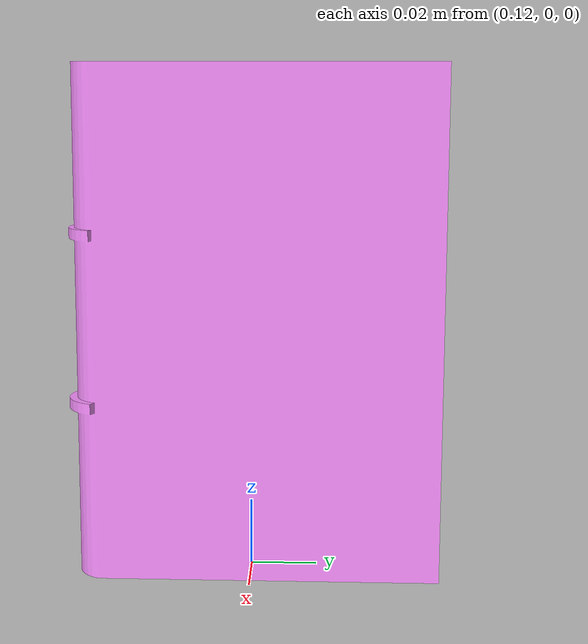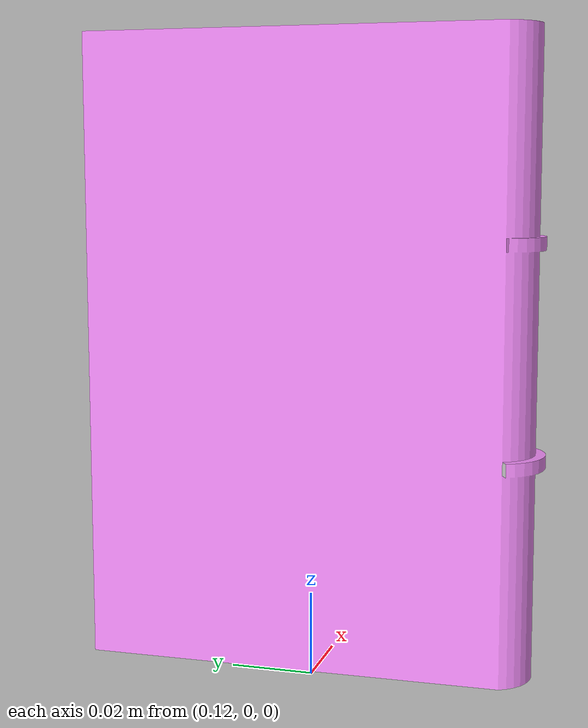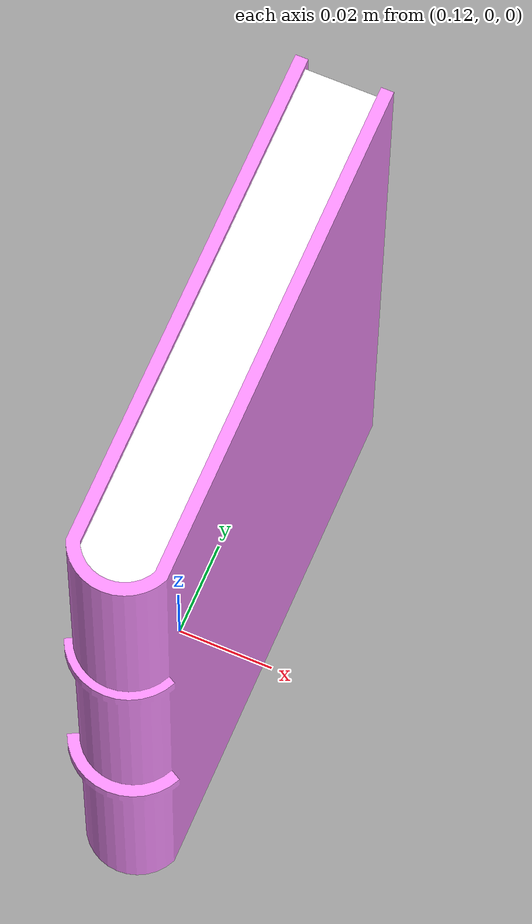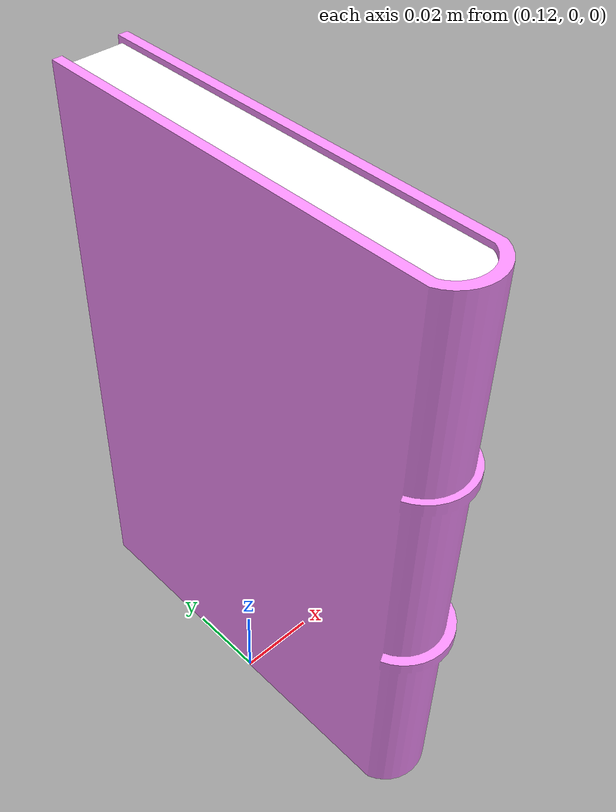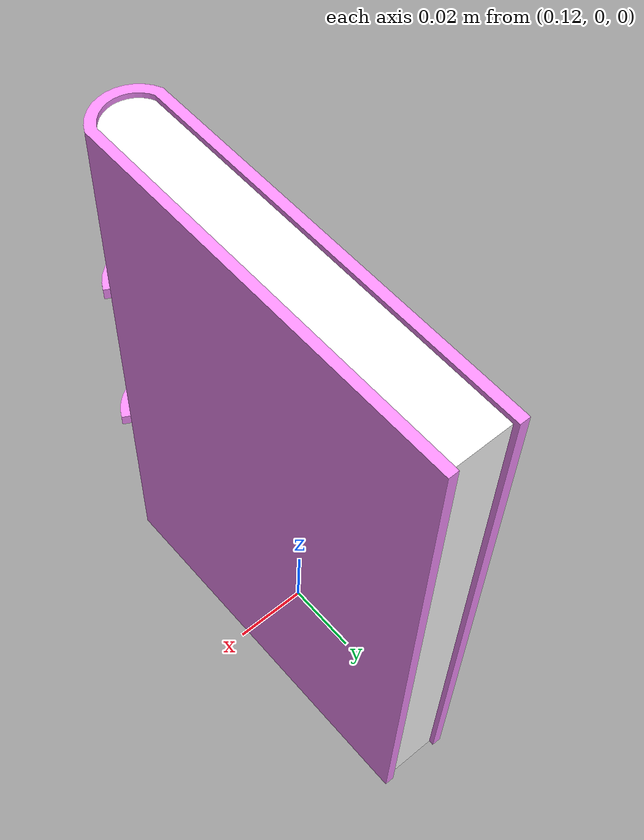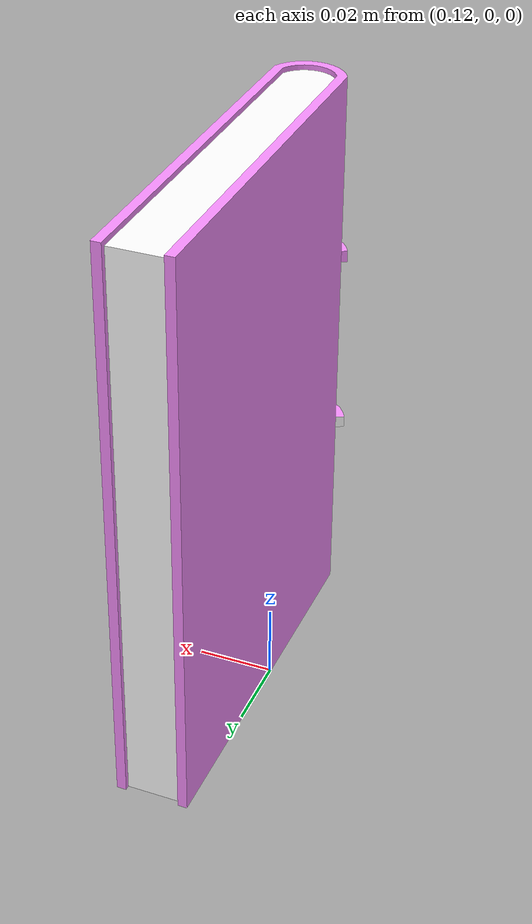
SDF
<?xml version='1.0'?>
<sdf version='1.6'>
  <model name='book_pink'>
    <link name='link_2'>
      <pose frame=''>0 0 0.014311 0 -0 0</pose>
      <visual name='visual'>
        <pose frame=''>0 0 0 0 -0 0</pose>
        <geometry>
          <mesh>
            <uri>model://book_pink/meshes/book2_cover.dae</uri>
            <scale>1 1 1</scale>
          </mesh>
        </geometry>
        <material>
          <lighting>1</lighting>
            <ambient>0.968 0.560 0.992 1</ambient>
          <diffuse>0.968 0.560 0.992 1</diffuse>
          <specular>0.01 0.01 0.01 1</specular>
          <emissive>0 0 0 1</emissive>
          <shader type='vertex'>
            <normal_map>__default__</normal_map>
          </shader>
        </material>
        <cast_shadows>1</cast_shadows>
        <transparency>0</transparency>
      </visual>
      <collision name='collision'>
        <laser_retro>0</laser_retro>
        <max_contacts>10</max_contacts>
        <pose frame=''>0 0 0 0 -0 0</pose>
        <geometry>
          <mesh>
            <uri>model://book_pink/meshes/book2_cover.dae</uri>
            <scale>1 1 1</scale>
          </mesh>
        </geometry>
       </collision>
    </link>
    <link name='link_3'>
      <pose frame=''>0 0 0.014311 0 -0 0</pose>
       <visual name='visual'>
        <pose frame=''>0 0 0 0 -0 0</pose>
        <geometry>
          <mesh>
            <uri>model://book_pink/meshes/book2_page.dae</uri>
            <scale>1 1 1</scale>
          </mesh>
        </geometry>
        <material>
          <lighting>1</lighting>
           <ambient>1 1 1 1</ambient>
          <diffuse>1 1 1 1</diffuse>
          <specular>0.01 0.01 0.01 1</specular>
          <emissive>0 0 0 1</emissive>
          <shader type='vertex'>
            <normal_map>__default__</normal_map>
          </shader>
        </material>
        <cast_shadows>1</cast_shadows>
        <transparency>0</transparency>
      </visual>
      <collision name='collision'>
        <laser_retro>0</laser_retro>
        <max_contacts>10</max_contacts>
        <pose frame=''>0 0 0 0 -0 0</pose>
        <geometry>
          <mesh>
            <uri>model://book_pink/meshes/book2_page.dae</uri>
            <scale>1 1 1</scale>
          </mesh>
        </geometry>
      </collision>
    </link>
    <static>1</static>
    <allow_auto_disable>1</allow_auto_disable>
  </model>
</sdf>
